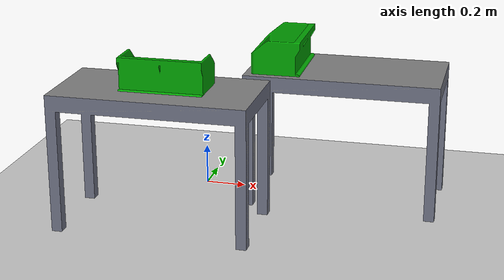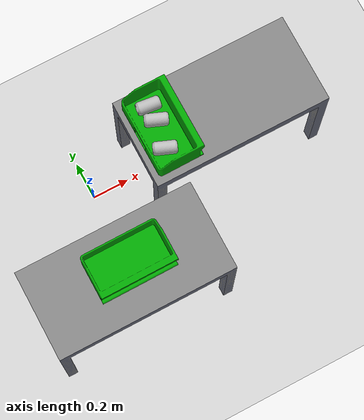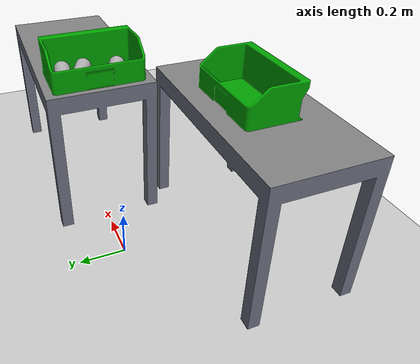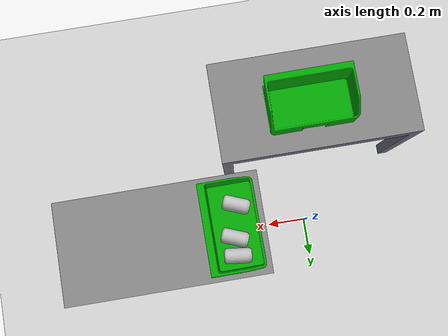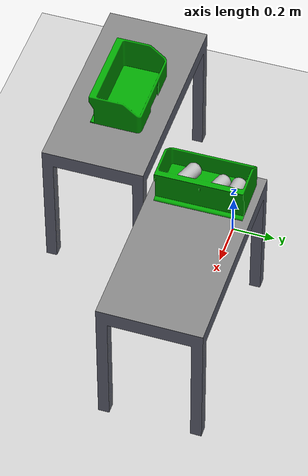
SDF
<sdf version="1.7">
 <world name="default">
  <light name="sun" type="directional">
   <pose>0 0 10 0 -0 0</pose>
   <diffuse>0.8 0.8 0.8 1</diffuse>
   <specular>0.2 0.2 0.2 1</specular>
   <attenuation>
    <range>1000</range>
    <constant>0.9</constant>
    <linear>0.01</linear>
    <quadratic>0.001</quadratic>
   </attenuation>
   <direction>-0.5 0.1 -0.9</direction>
   <spot><inner_angle>0</inner_angle><outer_angle>0</outer_angle><falloff>0</falloff></spot>
  </light>
  <model name="ground_plane">
   <static>1</static>
   <link name="link">
    <collision name="collision">
     <geometry><plane><normal>0 0 1</normal><size>100 100</size></plane></geometry>
     <surface>
      <contact><collide_bitmask>65535</collide_bitmask></contact>
      <friction><ode><mu>100</mu><mu2>50</mu2></ode></friction>
     </surface>
    </collision>
    <visual name="visual">
     <cast_shadows>0</cast_shadows>
     <geometry><plane><normal>0 0 1</normal><size>100 100</size></plane></geometry>
     <material>
      <script><uri>file://media/materials/scripts/gazebo.material</uri><name>Gazebo/Grey</name></script>
     </material>
    </visual>
   </link>
  </model>
  <gravity>0 0 -9.8</gravity>
  <magnetic_field>6e-06 2.3e-05 -4.2e-05</magnetic_field>
  <atmosphere type="adiabatic"/>
  <physics type="ode">
   <max_step_size>0.001</max_step_size>
   <real_time_factor>1</real_time_factor>
   <real_time_update_rate>1000</real_time_update_rate>
  </physics>
  <scene><ambient>0.4 0.4 0.4 1</ambient><background>0.7 0.7 0.7 1</background><shadows>1</shadows></scene>
  <spherical_coordinates>
   <surface_model>EARTH_WGS84</surface_model>
   <latitude_deg>0</latitude_deg>
   <longitude_deg>0</longitude_deg>
   <elevation>0</elevation>
   <heading_deg>0</heading_deg>
  </spherical_coordinates>
  <model name="table_dining_0">
   <link name="link_24">
    <visual name="visual">
     <geometry><mesh><uri>model://table_dining/meshes/table2.dae</uri><scale>1 1 1</scale></mesh></geometry>
     <material>
      <script>
       <uri>model://table_dining/materials/scripts</uri>
       <uri>model://table_dining/materials/textures</uri>
       <name>dining_table</name>
      </script>
     </material>
    </visual>
    <collision name="collision">
     <geometry><mesh><uri>model://table_dining/meshes/table2.dae</uri><scale>1 1 1</scale></mesh></geometry>
    </collision>
   </link>
   <static>1</static>
   <pose>-0.075641 -0.549454 0 0 -0 0</pose>
  </model>
  <model name="100mmbin">
   <static>1</static>
   <link name="link">
    <inertial>
     <mass>0.0189132</mass>
     <inertia>
      <ixx>3.3606e-06</ixx>
      <ixy>0</ixy>
      <ixz>0</ixz>
      <iyy>3.3606e-06</iyy>
      <iyz>0</iyz>
      <izz>1.34976e-06</izz>
     </inertia>
    </inertial>
    <collision name="collision">
     <geometry><mesh><uri>model://100mmbin/meshes/100mm.stl</uri><scale>1 1 1</scale></mesh></geometry>
     <surface><friction><ode><mu>30</mu><mu2>30</mu2></ode></friction></surface>
    </collision>
    <visual name="visual">
     <geometry><mesh><uri>model://100mmbin/meshes/100mm.dae</uri><scale>1 1 1</scale></mesh></geometry>
    </visual>
    <velocity_decay><linear>0</linear><angular>0</angular></velocity_decay>
   </link>
   <pose>-0.040279 -0.513616 0.655751 0 0 -3.13759</pose>
  </model>
  <model name="coca_cola">
   <link name="link">
    <pose>0 0 0.115 0 -0 0</pose>
    <inertial>
     <mass>0.39</mass>
     <inertia><ixx>0.00058</ixx><ixy>0</ixy><ixz>0</ixz><iyy>0.00058</iyy><iyz>0</iyz><izz>0.00019</izz></inertia>
    </inertial>
    <collision name="collision">
     <geometry><cylinder><radius>0.0301625</radius><length>0.12065</length></cylinder></geometry>
    </collision>
    <visual name="bodyMesh">
     <geometry><mesh><uri>model://coca_cola/meshes/coke.dae</uri><scale>1 1 1</scale></mesh></geometry>
    </visual>
   </link>
   <pose>0.475061 -0.147688 0.702554 1.57075 0.683757 -1.9479</pose>
  </model>
  <model name="100mmbin_0">
   <static>1</static>
   <link name="link">
    <inertial>
     <mass>0.0189132</mass>
     <inertia>
      <ixx>3.3606e-06</ixx>
      <ixy>0</ixy>
      <ixz>0</ixz>
      <iyy>3.3606e-06</iyy>
      <iyz>0</iyz>
      <izz>1.34976e-06</izz>
     </inertia>
    </inertial>
    <collision name="collision">
     <geometry><mesh><uri>model://100mmbin/meshes/100mm.stl</uri><scale>1 1 1</scale></mesh></geometry>
     <surface><friction><ode><mu>30</mu><mu2>30</mu2></ode></friction></surface>
    </collision>
    <visual name="visual">
     <geometry><mesh><uri>model://100mmbin/meshes/100mm.dae</uri><scale>1 1 1</scale></mesh></geometry>
    </visual>
    <velocity_decay><linear>0</linear><angular>0</angular></velocity_decay>
   </link>
   <pose>0.400926 -0.013712 0.660678 0 0 -1.56256</pose>
  </model>
  <model name="table_dining">
   <link name="link_24">
    <visual name="visual">
     <geometry><mesh><uri>model://table_dining/meshes/table2.dae</uri><scale>1 1 1</scale></mesh></geometry>
     <material>
      <script>
       <uri>model://table_dining/materials/scripts</uri>
       <uri>model://table_dining/materials/textures</uri>
       <name>dining_table</name>
      </script>
     </material>
    </visual>
    <collision name="collision">
     <geometry><mesh><uri>model://table_dining/meshes/table2.dae</uri><scale>1 1 1</scale></mesh></geometry>
    </collision>
   </link>
   <static>1</static>
   <pose>0.717599 -0.026596 0 0 -0 0</pose>
  </model>
  <model name="coca_cola_clone">
   <link name="link">
    <pose>0 0 0.115 0 -0 0</pose>
    <inertial>
     <mass>0.39</mass>
     <inertia><ixx>0.00058</ixx><ixy>0</ixy><ixz>0</ixz><iyy>0.00058</iyy><iyz>0</iyz><izz>0.00019</izz></inertia>
    </inertial>
    <collision name="collision">
     <geometry><cylinder><radius>0.0301625</radius><length>0.12065</length></cylinder></geometry>
    </collision>
    <visual name="bodyMesh">
     <geometry><mesh><uri>model://coca_cola/meshes/coke.dae</uri><scale>1 1 1</scale></mesh></geometry>
    </visual>
   </link>
   <pose>0.503319 -0.004797 0.702564 1.57081 -0.257045 -1.94771</pose>
  </model>
  <model name="coca_cola_clone_0">
   <link name="link">
    <pose>0 0 0.115 0 -0 0</pose>
    <inertial>
     <mass>0.39</mass>
     <inertia><ixx>0.00058</ixx><ixy>0</ixy><ixz>0</ixz><iyy>0.00058</iyy><iyz>0</iyz><izz>0.00019</izz></inertia>
    </inertial>
    <collision name="collision">
     <geometry><cylinder><radius>0.0301625</radius><length>0.12065</length></cylinder></geometry>
    </collision>
    <visual name="bodyMesh">
     <geometry><mesh><uri>model://coca_cola/meshes/coke.dae</uri><scale>1 1 1</scale></mesh></geometry>
    </visual>
   </link>
   <pose>0.509928 0.104716 0.702561 -1.5708 -0.72607 1.45734</pose>
  </model>
 </world>
</sdf>
